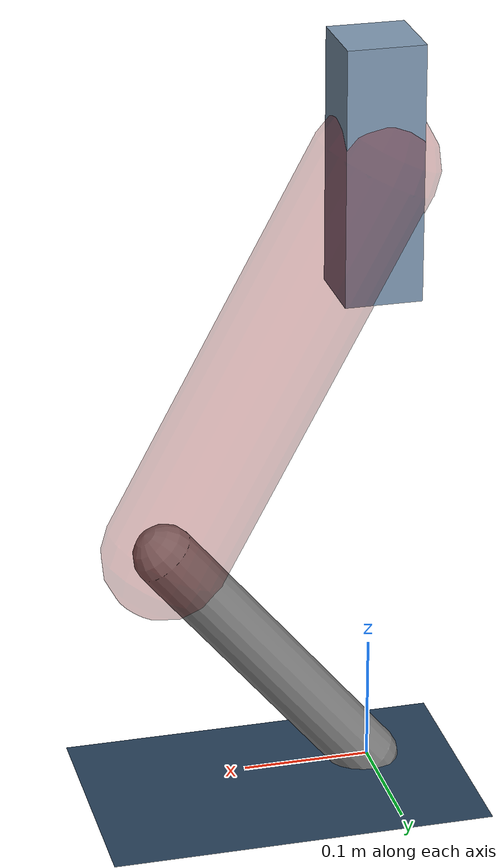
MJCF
<mujoco model="Hopper2D">
	<compiler inertiafromgeom="true" angle="radian" />
	<option timestep="0.001" integrator="implicit" cone="elliptic" solver="Newton" tolerance="1e-10" />

	<default>
		<geom contype="1" conaffinity="1" condim="3" friction="2 0.005 0.0001" solref="0.005 1" />
		<joint limited="true" damping="0.1" />
	</default>

	<asset>
		<texture name="skybox" type="skybox" builtin="gradient" rgb1=".4 .6 .8" rgb2="0 0 0" width="800" height="800" />
		<texture name="grid" type="2d" builtin="checker" rgb1=".1 .2 .3" rgb2=".2 .3 .4" width="300" height="300" mark="edge" markrgb=".2 .3 .4" />
		<material name="ground" texture="grid" texrepeat="1 1" texuniform="true" reflectance="0.1" />
		<material name="leg" rgba="0.5 0.6 0.7 1" />
	</asset>

	<worldbody>

		<geom name="floor" type="plane" size="5 5 0.25" material="ground" />

		<light directional="false" diffuse="0.8 0.8 0.8" specular="0.3 0.3 0.3" pos="0 0 2" dir="0 0 -1" />
		<light mode="targetbodycom" target="base" directional="false" diffuse="0.8 0.8 0.8" specular="0.3 0.3 0.3" pos="0 0 2" dir="0 0 -1" />

		<camera name="fixed" pos="0 -2 1" xyaxes="1 0 0 0 0 1" />
		<camera name="tracking" mode="trackcom" pos="0 -3 1" />

		<body name="root" pos="0 0 0.4998920312268923">
			<joint name="slide_x" type="slide" axis="1 0 0" range="-100 100" />
			<joint name="slide_z" type="slide" axis="0 0 1" range="0 10" />

			<body name="base" pos="0 0 0">
				<geom name="torso" type="box" size="0.03 0.03 0.1" mass="1.621" material="leg" />

				<body name="link1" pos="0 0 0" euler="0 1.0776440744646667 0">
					<joint type="hinge" axis="0 -1 0" pos="0 0 0" name="hinge1" limited="true" range="-3.14 3.14" stiffness="0" damping="0.1" />
					<geom name="thigh" type="capsule" fromto="0 0 0 0.34463688172326357 0 0" size="0.05" rgba="0.5 0 0 0.3" mass="1.1115832688251381" />

					<body name="link2" pos="0.34463688172326357 0 0" euler="0 1.1865436839740435 0">
						<joint type="hinge" axis="0 -1 0" pos="0 0 0" name="hinge2" limited="true" range="-3.14 3.14" stiffness="0" damping="0.1" />
						<geom name="shank" type="capsule" fromto="0 0 0 0.25526558767388696 0 0" size="0.025" mass="0.44683902890649824" />

					</body>
				</body>
			</body>
		</body>
	</worldbody>

	<actuator>
		<motor name="torque1" joint="hinge1" ctrlrange="-38.58085084740833 38.58085084740833" ctrllimited="true" gear="1" />
		<motor name="torque2" joint="hinge2" ctrlrange="-61.50742632034078 61.50742632034078" ctrllimited="true" gear="1" />
	</actuator>
</mujoco>
